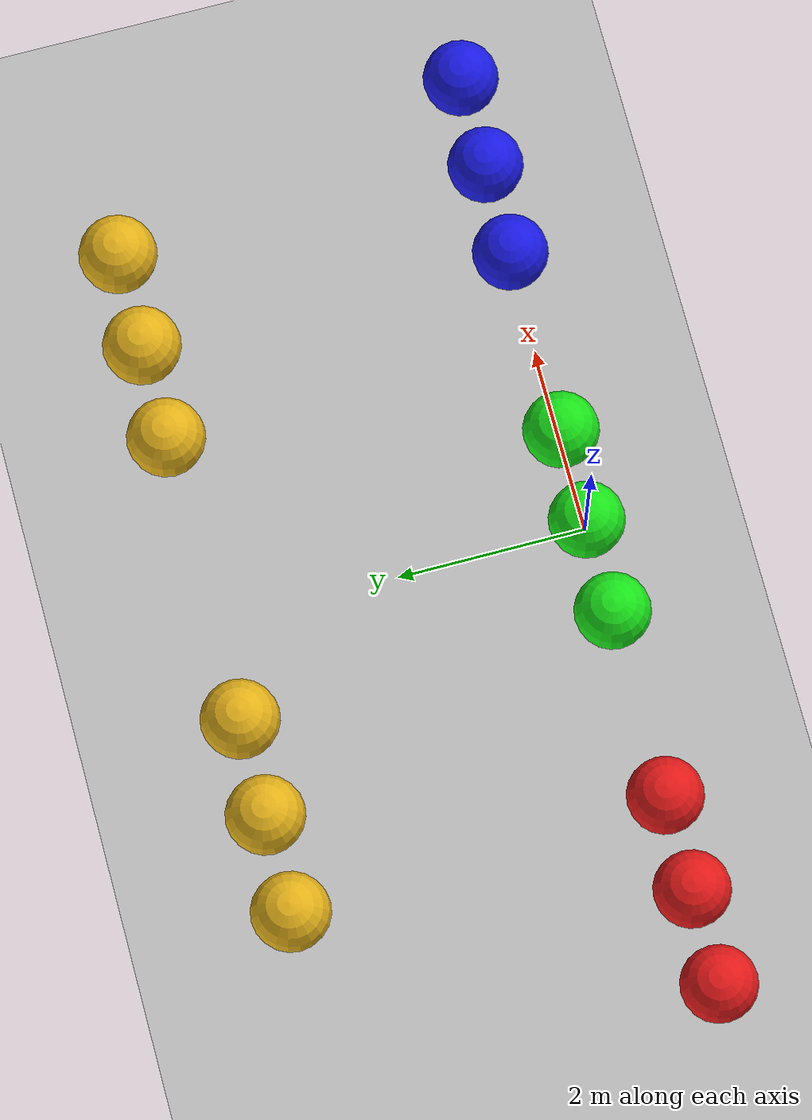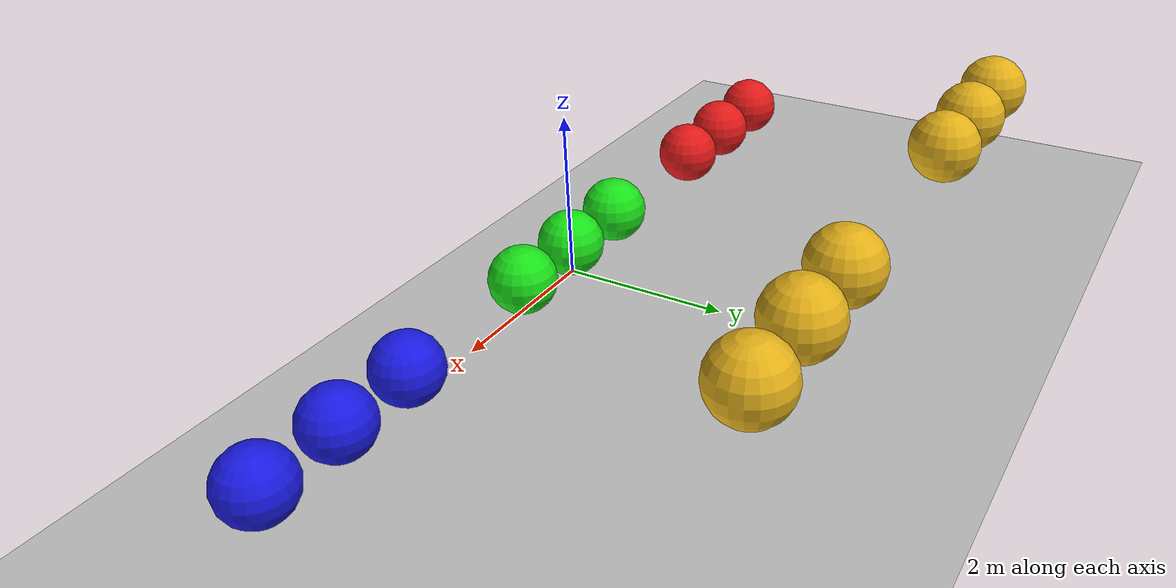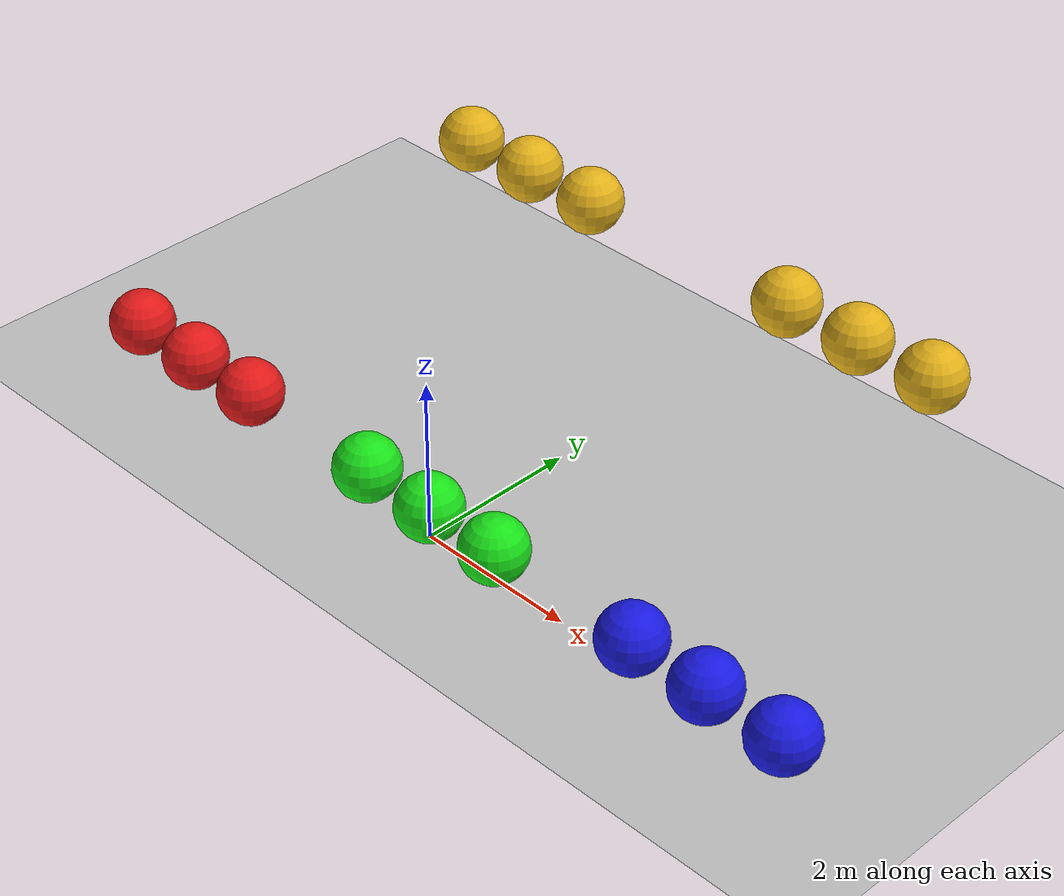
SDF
<?xml version="1.0" ?>
<sdf version="1.9">
  <world name="label_probe">

    <plugin filename="gz-sim-physics-system"           name="gz::sim::systems::Physics"/>
    <plugin filename="gz-sim-user-commands-system"     name="gz::sim::systems::UserCommands"/>
    <plugin filename="gz-sim-scene-broadcaster-system" name="gz::sim::systems::SceneBroadcaster"/>
    <plugin filename="gz-sim-sensors-system"           name="gz::sim::systems::Sensors">
      <render_engine>ogre2</render_engine>
    </plugin>

    <physics name="fast" type="dart">
      <max_step_size>0.004</max_step_size>
      <real_time_factor>1.0</real_time_factor>
    </physics>

    <scene>
      <ambient>0.7 0.7 0.7 1</ambient>
      <background>0.25 0.35 0.55</background>
      <shadows>false</shadows>
      <grid>false</grid>
    </scene>

    <light type="directional" name="sun">
      <cast_shadows>false</cast_shadows>
      <pose>0 0 10 0 0 0</pose>
      <diffuse>1 1 1 1</diffuse>
      <specular>0.2 0.2 0.2 1</specular>
      <direction>-0.2 0.4 -0.9</direction>
    </light>

    <model name="ground_plane">
      <static>true</static>
      <link name="link">
        <collision name="collision">
          <geometry><plane><normal>0 0 1</normal><size>100 100</size></plane></geometry>
        </collision>
        <visual name="visual">
          <geometry><plane><normal>0 0 1</normal><size>100 100</size></plane></geometry>
          <material>
            <ambient>0.75 0.75 0.75 1</ambient>
            <diffuse>0.75 0.75 0.75 1</diffuse>
          </material>
          <plugin filename="gz-sim-label-system" name="gz::sim::systems::Label">
            <label>10</label>
          </plugin>
        </visual>
      </link>
    </model>

    <!-- === A (40) 모델1 / 링크1 / visual 3개 ============================ -->
    <model name="cfgA_one_link_three_visuals">
      <static>true</static>
      <pose>0 0 0 0 0 0</pose>
      <link name="link">
        <visual name="a1">
          <pose>-5.0 0 0.4 0 0 0</pose>
          <geometry><sphere><radius>0.4</radius></sphere></geometry>
          <material><ambient>0.9 0.1 0.1 1</ambient><diffuse>0.9 0.1 0.1 1</diffuse></material>
          <plugin filename="gz-sim-label-system" name="gz::sim::systems::Label"><label>40</label></plugin>
        </visual>
        <visual name="a2">
          <pose>-4.0 0 0.4 0 0 0</pose>
          <geometry><sphere><radius>0.4</radius></sphere></geometry>
          <material><ambient>0.9 0.1 0.1 1</ambient><diffuse>0.9 0.1 0.1 1</diffuse></material>
          <plugin filename="gz-sim-label-system" name="gz::sim::systems::Label"><label>40</label></plugin>
        </visual>
        <visual name="a3">
          <pose>-3.0 0 0.4 0 0 0</pose>
          <geometry><sphere><radius>0.4</radius></sphere></geometry>
          <material><ambient>0.9 0.1 0.1 1</ambient><diffuse>0.9 0.1 0.1 1</diffuse></material>
          <plugin filename="gz-sim-label-system" name="gz::sim::systems::Label"><label>40</label></plugin>
        </visual>
      </link>
    </model>

    <!-- === B (41) 모델1 / 링크 3개 ====================================== -->
    <model name="cfgB_three_links">
      <static>true</static>
      <pose>0 0 0 0 0 0</pose>
      <link name="b1_link">
        <pose>-1.0 0 0.4 0 0 0</pose>
        <visual name="b1">
          <geometry><sphere><radius>0.4</radius></sphere></geometry>
          <material><ambient>0.1 0.9 0.1 1</ambient><diffuse>0.1 0.9 0.1 1</diffuse></material>
          <plugin filename="gz-sim-label-system" name="gz::sim::systems::Label"><label>41</label></plugin>
        </visual>
      </link>
      <link name="b2_link">
        <pose>0 0 0.4 0 0 0</pose>
        <visual name="b2">
          <geometry><sphere><radius>0.4</radius></sphere></geometry>
          <material><ambient>0.1 0.9 0.1 1</ambient><diffuse>0.1 0.9 0.1 1</diffuse></material>
          <plugin filename="gz-sim-label-system" name="gz::sim::systems::Label"><label>41</label></plugin>
        </visual>
      </link>
      <link name="b3_link">
        <pose>1.0 0 0.4 0 0 0</pose>
        <visual name="b3">
          <geometry><sphere><radius>0.4</radius></sphere></geometry>
          <material><ambient>0.1 0.9 0.1 1</ambient><diffuse>0.1 0.9 0.1 1</diffuse></material>
          <plugin filename="gz-sim-label-system" name="gz::sim::systems::Label"><label>41</label></plugin>
        </visual>
      </link>
    </model>

    <model name="cfgC_1">
      <static>true</static><pose>3.0 0 0.4 0 0 0</pose>
      <link name="link"><visual name="visual">
        <geometry><sphere><radius>0.4</radius></sphere></geometry>
        <material><ambient>0.1 0.1 0.9 1</ambient><diffuse>0.1 0.1 0.9 1</diffuse></material>
      </visual></link>
      <plugin filename="gz-sim-label-system" name="gz::sim::systems::Label"><label>42</label></plugin>
    </model>
    <model name="cfgC_2">
      <static>true</static><pose>4.0 0 0.4 0 0 0</pose>
      <link name="link"><visual name="visual">
        <geometry><sphere><radius>0.4</radius></sphere></geometry>
        <material><ambient>0.1 0.1 0.9 1</ambient><diffuse>0.1 0.1 0.9 1</diffuse></material>
      </visual></link>
      <plugin filename="gz-sim-label-system" name="gz::sim::systems::Label"><label>42</label></plugin>
    </model>
    <model name="cfgC_3">
      <static>true</static><pose>5.0 0 0.4 0 0 0</pose>
      <link name="link"><visual name="visual">
        <geometry><sphere><radius>0.4</radius></sphere></geometry>
        <material><ambient>0.1 0.1 0.9 1</ambient><diffuse>0.1 0.1 0.9 1</diffuse></material>
      </visual></link>
      <plugin filename="gz-sim-label-system" name="gz::sim::systems::Label"><label>42</label></plugin>
    </model>

    <include>
      <name>cfgD_1</name><uri>model://probe_sphere</uri><pose>-3.5 4 1.9 0 0 0</pose>
      <plugin filename="gz-sim-label-system" name="gz::sim::systems::Label"><label>43</label></plugin>
    </include>
    <include>
      <name>cfgD_2</name><uri>model://probe_sphere</uri><pose>-2.5 4 1.9 0 0 0</pose>
      <plugin filename="gz-sim-label-system" name="gz::sim::systems::Label"><label>43</label></plugin>
    </include>
    <include>
      <name>cfgD_3</name><uri>model://probe_sphere</uri><pose>-1.5 4 1.9 0 0 0</pose>
      <plugin filename="gz-sim-label-system" name="gz::sim::systems::Label"><label>43</label></plugin>
    </include>

    <model name="cfgE_parent_row">
      <static>true</static>
      <pose>2.5 4 0 0 0 0</pose>
      <include>
        <name>e1</name><uri>model://probe_sphere</uri><pose>-1.0 0 1.9 0 0 0</pose>
        <plugin filename="gz-sim-label-system" name="gz::sim::systems::Label"><label>44</label></plugin>
      </include>
      <include>
        <name>e2</name><uri>model://probe_sphere</uri><pose>0 0 1.9 0 0 0</pose>
        <plugin filename="gz-sim-label-system" name="gz::sim::systems::Label"><label>44</label></plugin>
      </include>
      <include>
        <name>e3</name><uri>model://probe_sphere</uri><pose>1.0 0 1.9 0 0 0</pose>
        <plugin filename="gz-sim-label-system" name="gz::sim::systems::Label"><label>44</label></plugin>
      </include>
    </model>

    <!-- === 관측 카메라 ================================================== -->
    <model name="probe_camera">
      <static>true</static>
      <pose>0 -11 2.0 0 0.06 1.5708</pose>
      <link name="link">
        <sensor name="panoptic" type="segmentation">
          <topic>probe/panoptic</topic><always_on>1</always_on><update_rate>4</update_rate>
          <camera>
            <segmentation_type>panoptic</segmentation_type>
            <horizontal_fov>1.05</horizontal_fov>
            <image><width>960</width><height>540</height></image>
            <clip><near>0.1</near><far>60</far></clip>
          </camera>
        </sensor>
        <sensor name="semantic" type="segmentation">
          <topic>probe/semantic</topic><always_on>1</always_on><update_rate>4</update_rate>
          <camera>
            <segmentation_type>semantic</segmentation_type>
            <horizontal_fov>1.05</horizontal_fov>
            <image><width>960</width><height>540</height></image>
            <clip><near>0.1</near><far>60</far></clip>
          </camera>
        </sensor>
        <sensor name="rgb" type="camera">
          <topic>probe/rgb</topic><always_on>1</always_on><update_rate>4</update_rate>
          <camera>
            <horizontal_fov>1.05</horizontal_fov>
            <image><width>960</width><height>540</height></image>
            <clip><near>0.1</near><far>60</far></clip>
          </camera>
        </sensor>
        <sensor name="boxes_visible" type="boundingbox_camera">
          <topic>probe/boxes_visible</topic><always_on>1</always_on><update_rate>4</update_rate>
          <camera>
            <box_type>visible_2d</box_type>
            <horizontal_fov>1.05</horizontal_fov>
            <image><width>960</width><height>540</height></image>
            <clip><near>0.1</near><far>60</far></clip>
          </camera>
        </sensor>
      </link>
    </model>

  </world>
</sdf>

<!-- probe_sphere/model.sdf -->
<sdf version="1.9">
  <model name="probe_sphere">
    <static>true</static>
    <link name="link">
      <visual name="visual">
        <geometry><sphere><radius>0.4</radius></sphere></geometry>
        <material>
          <ambient>0.9 0.7 0.1 1</ambient>
          <diffuse>0.9 0.7 0.1 1</diffuse>
        </material>
      </visual>
    </link>
  </model>
</sdf>
